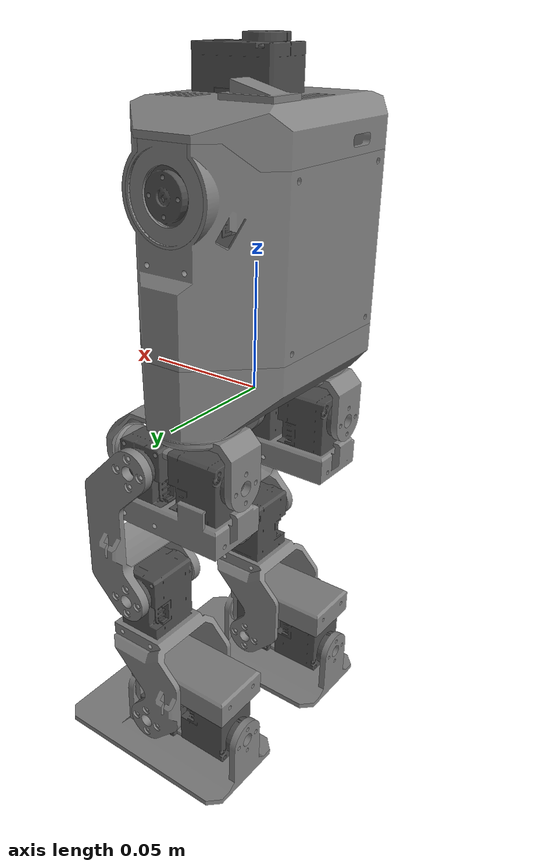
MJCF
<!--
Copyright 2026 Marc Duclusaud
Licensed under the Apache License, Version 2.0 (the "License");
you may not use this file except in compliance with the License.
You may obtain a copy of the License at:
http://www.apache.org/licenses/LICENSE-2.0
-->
<!-- Generated using onshape-to-robot -->
<!-- Onshape https://cad.onshape.com/documents/d424992a192a8ce34ffce163/v/d1df625a85f2de984257464b/e/b34620a03cc3a684006c5867 -->
<mujoco model="microban">
  <compiler angle="radian" meshdir="assets" autolimits="true"/>
  <default>
    <default class="microban">
      <joint frictionloss="0.1" armature="0.005"/>
      <position kp="50" dampratio="1"/>
      <default class="visual">
        <geom type="mesh" contype="0" conaffinity="0" group="2"/>
      </default>
      <default class="collision">
        <geom group="3"/>
      </default>
    </default>
    <default class="xl330">
      <joint damping="0.041" frictionloss="0.013" armature="0.0018"/>
      <motor gear="1"/>
    </default>
  </default>
  <sensor>
    <framequat name="orientation" objtype="site" noise="0.001" objname="imu"/>
    <gyro name="angular-velocity" site="imu" noise="0.005"/>
    <gyro name="imu_ang_vel" site="imu"/>
    <velocimeter name="imu_lin_vel" site="imu"/>
    <accelerometer name="imu_accel" site="imu"/>
    <subtreeangmom name="root_angmom" body="trunk"/>
  </sensor>
  <worldbody>
    <!-- Link trunk -->
    <body name="trunk" pos="0 0 0" quat="1 0 0 0" childclass="microban">
      <freejoint name="trunk_freejoint"/>
      <inertial pos="-0.00454781 -0.000104579 0.053896" mass="0.347283" fullinertia="0.000608722 0.000477224 0.000357224 -5.1387e-07 -1.16287e-05 1.9299e-06"/>
      <geom type="mesh" class="visual" pos="0.00575 -0.036 -0.0484" quat="0.707107 0 0 0.707107" mesh="arm_bearing_support__configuration_right" material="arm_bearing_support__configuration_right_material"/>
      <geom type="mesh" class="visual" pos="0 -0.044 0.081" quat="0.707107 0.707107 0 0" mesh="xl330_without_horn" material="xl330_without_horn_material"/>

      <geom class="collision" pos="0 0 0.05375" quat="0.707107 0 0 0.707107" type="box" size="0.054 0.008 0.05375"/>
      <geom class="collision" pos="0 0 0.05775" quat="0.707107 0 0 0.707107" type="box" size="0.029 0.033 0.04275"/>
      <geom type="mesh" class="visual" pos="0.00575 -0.036 -0.0484" quat="0.707107 0 0 0.707107" mesh="pelvis__configuration_right" material="pelvis__configuration_right_material"/>
      <geom type="mesh" class="visual" pos="-0.00575 0.036 -0.0484" quat="0.707107 -0 0 -0.707107" mesh="arm_bearing_support__configuration_right" material="arm_bearing_support__configuration_right_material"/>
      <geom type="mesh" class="visual" pos="-0.00204165 -0 0.1195" quat="0.707107 0 0 0.707107" mesh="xl330_without_horn" material="xl330_without_horn_material"/>
      <geom type="mesh" class="visual" pos="-0 0.036 0.0065" quat="0 0 -1 0" mesh="xl330_without_horn" material="xl330_without_horn_material"/>
      <geom type="mesh" class="visual" pos="-0 0.044 0.081" quat="0 0 -0.707107 -0.707107" mesh="xl330_without_horn" material="xl330_without_horn_material"/>
      <geom type="mesh" class="visual" pos="0.00575 -0.036 -0.0484" quat="0.707107 0 0 0.707107" mesh="chest__configuration_right" material="chest__configuration_right_material"/>
      <geom type="mesh" class="visual" pos="0.00575 -0.036 -0.0484" quat="0.707107 0 0 0.707107" mesh="trunk_top__configuration_right" material="trunk_top__configuration_right_material"/>
      <geom type="mesh" class="visual" pos="-0.01 -0 0.05115" quat="0.5 0.5 -0.5 -0.5" mesh="battery" material="battery_material"/>
      <geom type="mesh" class="visual" pos="-0.014 0.02 0.1075" quat="1 0 0 0" mesh="switch" material="switch_material"/>
      <geom type="mesh" class="visual" pos="0 -0.036 0.0065" quat="0 1 0 -0" mesh="xl330_without_horn" material="xl330_without_horn_material"/>
      <site group="3" name="body" pos="0 0 0" quat="1 -0 -0 -0"/>
      <!-- Frame imu -->
      <site group="3" name="imu" pos="0.01483 -0.002 0.0675" quat="0.5 -0.5 -0.5 0.5"/>
      <!-- Link head -->
        <!-- Joint from trunk to head -->
      <!-- Link shoulder -->
        <!-- Joint from trunk to shoulder -->
          <!-- Joint from shoulder to humerus__configuration_right -->
          <!-- Link radius -->
            <!-- Joint from humerus__configuration_right to radius -->
      <!-- Link hip -->
      <body name="hip" pos="0 -0.036 0" quat="1 -0 -0 0">
        <!-- Joint from trunk to hip -->
        <joint axis="0 0 1" name="right_hip_yaw" type="hinge" range="-4.188790204786353 1.047197551196635" class="xl330"/>
        <inertial pos="0.00421822 1.46909e-07 -0.00948697" mass="0.00884451" fullinertia="9.36719e-07 4.32505e-06 4.03697e-06 -3.3e-11 1.95496e-07 0"/>

        <geom type="mesh" class="visual" pos="0.00575 -0 -0.0484" quat="0.707107 0 0 0.707107" mesh="hip__configuration_right" material="hip__configuration_right_material"/>

        <!-- Link hip_block__configuration_right -->
        <body name="hip_block__configuration_right" pos="-0.02 0 -0.0214" quat="0.5 -0.5 0.5 -0.5">
          <!-- Joint from hip to hip_block__configuration_right -->
          <joint axis="0 0 1" name="right_hip_roll" type="hinge" range="-0.610865238197994 0.6108652381980366" class="xl330"/>
          <inertial pos="-5.75932e-05 0.00982795 0.0271518" mass="0.04763" fullinertia="1.64064e-05 1.33088e-05 7.85889e-06 -9.153e-09 7.8745e-08 6.63067e-07"/>

          <geom type="mesh" class="visual" pos="-0.008 -0 0.0385" quat="0 0.707107 0 -0.707107" mesh="xl330" material="xl330_material"/>
          <geom type="mesh" class="visual" pos="0 -0 0.033" quat="0 -0 1 0" mesh="dc15_a01_horn_idle2_dummy" material="dc15_a01_horn_idle2_dummy_material"/>
          <geom class="collision" pos="-0 0.02075 0.02575" quat="0 -0 0.707107 -0.707107" type="box" size="0.0135 0.02525 0.00625"/>
          <geom type="mesh" class="visual" pos="0 0.027 0.02575" quat="0 -0 0.707107 -0.707107" mesh="hip_dbl_block__configuration_right" material="hip_dbl_block__configuration_right_material"/>
          <geom type="mesh" class="visual" pos="-0 0 0.0065" quat="0 1 0 0" mesh="xl330_without_horn" material="xl330_without_horn_material"/>

          <geom type="mesh" class="visual" pos="0 -0 0.033" quat="0 -0 1 0" mesh="bts2_m2_6x8" material="bts2_m2_6x8_material"/>

          <geom type="mesh" class="visual" pos="0 -0 0.033" quat="0 -0 1 0" mesh="dc15_a01_idle_cap_dummy" material="dc15_a01_idle_cap_dummy_material"/>

          <geom type="mesh" class="visual" pos="-0 -0.0095 0.0385" quat="0 0 -0.707107 -0.707107" mesh="spacer__configuration_right" material="spacer__configuration_right_material"/>

          <body name="femur__configuration_right" pos="-0.0145 -0 0.0385" quat="0 0.707107 0 -0.707107">
            <!-- Joint from hip_block__configuration_right to femur__configuration_right -->
            <joint axis="0 0 1" name="right_hip_pitch" type="hinge" range="-1.5707963267948974 1.5707963267948957" class="xl330"/>
            <inertial pos="-0.0109472 -0.0366847 -0.0147025" mass="0.014726" fullinertia="1.12665e-05 4.38335e-06 8.95932e-06 -1.12592e-06 1.333e-09 -4.521e-09"/>

            <geom class="collision" pos="-0.015 -0.0335001 0.00275" quat="0.5 -0.5 0.5 0.5" type="box" size="0.00125 0.009 0.022228"/>
            <geom class="collision" pos="-0.008818 -0.00881806 0.00275" quat="0.653281 -0.270598 0.653281 0.270598" type="box" size="0.00125 0.009 0.0124705"/>
            <geom class="collision" pos="-0.011318 -0.0556821 0.00275" quat="0.270598 -0.653281 0.270598 0.653281" type="box" size="0.00125 0.009 0.008935"/>
            <geom type="mesh" class="visual" pos="0.003 -0.132713 -0.0145" quat="0.5 -0.5 0.5 0.5" mesh="femur__configuration_right" material="femur__configuration_right_material"/>

            <body name="tibia__configuration_right" pos="-0.005 -0.062 -0" quat="1 -0 0 -0">
              <!-- Joint from femur__configuration_right to tibia__configuration_right -->
              <joint axis="0 0 1" name="right_knee" type="hinge" range="-0.7853981633977201 2.356194490192073" class="xl330"/>
              <inertial pos="0.00276278 -0.0196679 -0.0144621" mass="0.0300463" fullinertia="1.53882e-05 5.3311e-06 1.38581e-05 2.25674e-06 7.6682e-08 -1.37001e-07"/>

              <geom type="mesh" class="visual" pos="0 -0 -0.0065" quat="1 -0 -0 0" mesh="xl330" material="xl330_material"/>

              <geom class="collision" pos="0.017 -0.0444631 0.00275" quat="0.5 -0.5 0.5 0.5" type="box" size="0.00125 0.009 0.0115"/>
              <geom class="collision" pos="0.0138 -0.0554431 0.00275" quat="0.653281 -0.270598 0.653281 0.270598" type="box" size="0.00125 0.009 0.00825"/>
              <geom class="collision" pos="0.00675 -0.0287131 0.00275" quat="0.270598 -0.653281 0.270598 0.653281" type="box" size="0.00125 0.0106065 0.016617"/>
              <geom class="collision" pos="0.0117 -0.0236231 -0.0145" quat="0.270598 -0.653281 0.270598 0.653281" type="box" size="0.0185 0.0035 0.0023295"/>
              <geom type="mesh" class="visual" pos="0.008 -0.0707131 -0.0145" quat="0.5 -0.5 0.5 0.5" mesh="tibia__configuration_right" material="tibia__configuration_right_material"/>

              <body name="ankle_block__configuration_left" pos="0.008 -0.0612131 -0" quat="0 -0 -0 1">
                <!-- Joint from tibia__configuration_right to ankle_block__configuration_left -->
                <joint axis="0 0 1" name="right_ankle_pitch" type="hinge" range="-1.5707963267948077 0.6108652381981041" class="xl330"/>
                <inertial pos="-0.0110676 -0.00979852 -0.0144015" mass="0.04722" fullinertia="7.83993e-06 1.29837e-05 1.60971e-05 -6.00742e-07 -4.9782e-08 -6.127e-09"/>

                <geom type="mesh" class="visual" pos="0 0 -0.0065" quat="1 0 -0 0" mesh="xl330" material="xl330_material"/>

                <geom type="mesh" class="visual" pos="-0.0055 0 -0.0145" quat="0 -0.707107 -0 0.707107" mesh="dc15_a01_horn_idle2_dummy" material="dc15_a01_horn_idle2_dummy_material"/>

                <geom class="collision" pos="-0.01275 -0.02075 -0.0145" quat="0.5 0.5 0.5 -0.5" type="box" size="0.0135 0.02525 0.00625"/>
                <geom type="mesh" class="visual" pos="0 0.0095 -0.0145" quat="0.5 0.5 0.5 -0.5" mesh="ankle_dbl_block__configuration_right" material="ankle_dbl_block__configuration_right_material"/>

                <geom type="mesh" class="visual" pos="-0.032 0 -0.0145" quat="0.707107 0 -0.707107 -0" mesh="xl330_without_horn" material="xl330_without_horn_material"/>

                <geom type="mesh" class="visual" pos="-0.0055 0 -0.0145" quat="0 -0.707107 -0 0.707107" mesh="bts2_m2_6x8" material="bts2_m2_6x8_material"/>

                <geom type="mesh" class="visual" pos="-0.0055 0 -0.0145" quat="0 -0.707107 -0 0.707107" mesh="dc15_a01_idle_cap_dummy" material="dc15_a01_idle_cap_dummy_material"/>

                <geom type="mesh" class="visual" pos="0 0.0095 -0.0145" quat="0.5 0.5 0.5 -0.5" mesh="spacer__configuration_right" material="spacer__configuration_right_material"/>
                <!-- Link foot -->
                <body name="foot" pos="-0.0385 0 -0.0145" quat="0 -0.707107 0 -0.707107">
                  <!-- Joint from ankle_block__configuration_left to foot -->
                  <joint axis="0 0 1" name="right_ankle_roll" type="hinge" range="-0.610865238197748 0.6108652381982826" class="xl330"/>
                  <inertial pos="-0 -0.0168869 0.0347422" mass="0.016823" fullinertia="1.15605e-05 1.2167e-05 2.53496e-06 0 -0 5.67932e-07"/>

                  <geom name="right_foot_collision_1" class="collision" pos="-0 -0.02175 0.042" quat="0 0 0.707107 0.707107" type="box" size="0.0225 0.04 0.00125"/>
                  <geom name="right_foot_collision_2" class="collision" pos="-0 -0.02175 0.042" quat="0 0 0.707107 0.707107" type="box" size="0.0175 0.045 0.00125"/>
                  <geom name="right_foot_collision_3" class="collision" pos="-0.0175 -0.02175 0.002" quat="0.270598 -0.270598 -0.653281 -0.653281" type="box" size="0.00353553 0.00353553 0.00125"/>
                  <geom name="right_foot_collision_4" class="collision" pos="0.0175 -0.02175 0.002" quat="0.270598 -0.270598 -0.653281 -0.653281" type="box" size="0.00353553 0.00353553 0.00125"/>
                  <geom name="right_foot_collision_5" class="collision" pos="-0.0175 -0.02175 0.082" quat="0.270598 -0.270598 -0.653281 -0.653281" type="box" size="0.00353553 0.00353553 0.00125"/>
                  <geom name="right_foot_collision_6" class="collision" pos="0.0175 -0.02175 0.082" quat="0.270598 -0.270598 -0.653281 -0.653281" type="box" size="0.00353553 0.00353553 0.00125"/>
                  <geom type="mesh" class="visual" pos="-0 -0.0095 0.0385" quat="0 0 0.707107 0.707107" mesh="foot__configuration_right" material="foot__configuration_right_material"/>

                  <!-- Frame right_foot -->
                  <site group="3" name="right_foot" pos="-0 -0.023 0.042" quat="0.5 -0.5 -0.5 -0.5"/>
                </body>
              </body>
            </body>
          </body>
        </body>
      </body>
      <!-- Link shoulder_2 -->
        <!-- Joint from trunk to shoulder_2 -->

        <!-- Link humerus__configuration_left -->
          <!-- Joint from shoulder_2 to humerus__configuration_left -->
          <!-- Link radius_2 -->
            <!-- Joint from humerus__configuration_left to radius_2 -->
      <!-- Link hip_2 -->
      <body name="hip_2" pos="-0 0.036 0" quat="0 -0 0 -1">
        <!-- Joint from trunk to hip_2 -->
        <joint axis="0 0 1" name="left_hip_yaw" type="hinge" range="-1.0471975511965976 4.1887902047863905" class="xl330"/>
        <inertial pos="-0.00421822 -1.46909e-07 -0.00948697" mass="0.00884451" fullinertia="9.36719e-07 4.32505e-06 4.03697e-06 -3.3e-11 -1.95496e-07 -0"/>

        <geom type="mesh" class="visual" pos="-0.00575 -0 -0.0484" quat="0.707107 -0 -0 -0.707107" mesh="hip__configuration_right" material="hip__configuration_right_material"/>

        <!-- Link hip_block__configuration_left -->
        <body name="hip_block__configuration_left" pos="0.02 0 -0.0214" quat="0.5 -0.5 -0.5 0.5">
          <!-- Joint from hip_2 to hip_block__configuration_left -->
          <joint axis="0 0 1" name="left_hip_roll" type="hinge" range="-0.6108652381980162 0.6108652381980144" class="xl330"/>
          <inertial pos="6.0554e-05 0.00982795 0.0271548" mass="0.04763" fullinertia="1.64096e-05 1.3312e-05 7.85888e-06 8.495e-09 -7.6959e-08 6.62404e-07"/>

          <geom type="mesh" class="visual" pos="0.008 -0 0.0385" quat="0 0.707107 0 0.707107" mesh="xl330" material="xl330_material"/>

          <geom type="mesh" class="visual" pos="-0 0 0.033" quat="0 -0 -1 -0" mesh="dc15_a01_horn_idle2_dummy" material="dc15_a01_horn_idle2_dummy_material"/>

          <geom class="collision" pos="-0 0.02075 0.02575" quat="0 -0 0.707107 -0.707107" type="box" size="0.0135 0.02525 0.00625"/>
          <geom type="mesh" class="visual" pos="0.027 0.027 0.02575" quat="0 -0 0.707107 -0.707107" mesh="hip_dbl_block__configuration_left" material="hip_dbl_block__configuration_left_material"/>

          <geom type="mesh" class="visual" pos="0 0 0.0065" quat="0 1 0 0" mesh="xl330_without_horn" material="xl330_without_horn_material"/>
          <geom type="mesh" class="visual" pos="-0 0 0.033" quat="0 -0 -1 -0" mesh="bts2_m2_6x8" material="bts2_m2_6x8_material"/>
          <geom type="mesh" class="visual" pos="-0 0 0.033" quat="0 -0 -1 -0" mesh="dc15_a01_idle_cap_dummy" material="dc15_a01_idle_cap_dummy_material"/>

          <geom type="mesh" class="visual" pos="-0 -0.0095 0.0385" quat="0 0 -0.707107 -0.707107" mesh="spacer__configuration_right" material="spacer__configuration_right_material"/>
          <!-- Link femur__configuration_left -->
          <body name="femur__configuration_left" pos="-0.0145 -0 0.0385" quat="0.707107 -0 -0.707107 0">
            <!-- Joint from hip_block__configuration_left to femur__configuration_left -->
            <joint axis="0 0 1" name="left_hip_pitch" type="hinge" range="-1.5707963267948974 1.5707963267948957" class="xl330"/>
            <inertial pos="0.0109472 0.0366847 -0.0142975" mass="0.014726" fullinertia="1.12665e-05 4.38335e-06 8.95932e-06 -1.12592e-06 1.333e-09 -4.521e-09"/>

            <geom class="collision" pos="0.015 0.0335001 -0.03175" quat="0.5 0.5 0.5 -0.5" type="box" size="0.00125 0.009 0.022228"/>
            <geom class="collision" pos="0.008818 0.00881806 -0.03175" quat="0.270598 0.653281 0.270598 -0.653281" type="box" size="0.00125 0.009 0.0124705"/>
            <geom class="collision" pos="0.011318 0.0556821 -0.03175" quat="0.653281 0.270598 0.653281 -0.270598" type="box" size="0.00125 0.009 0.008935"/>
            <geom type="mesh" class="visual" pos="-0.003 0.132713 -0.0515" quat="0.5 0.5 0.5 -0.5" mesh="femur__configuration_left" material="femur__configuration_left_material"/>

            <!-- Link tibia__configuration_left -->
            <body name="tibia__configuration_left" pos="0.005 0.062 0" quat="1 -0 -0 -0">
              <!-- Joint from femur__configuration_left to tibia__configuration_left -->
              <joint axis="0 0 1" name="left_knee" type="hinge" range="-0.7853981633974314 2.3561944901923617" class="xl330"/>
              <inertial pos="-0.00275805 0.0196679 -0.0145379" mass="0.0300463" fullinertia="1.53882e-05 5.33188e-06 1.38589e-05 2.25747e-06 7.7561e-08 -1.37001e-07"/>

              <geom type="mesh" class="visual" pos="-0 0 -0.0225" quat="0 1 0 0" mesh="xl330" material="xl330_material"/>
              <geom class="collision" pos="-0.017 0.0444631 -0.0317" quat="0.5 0.5 0.5 -0.5" type="box" size="0.00125 0.009 0.0115"/>
              <geom class="collision" pos="-0.0138 0.0554431 -0.03175" quat="0.270598 0.653281 0.270598 -0.653281" type="box" size="0.00125 0.009 0.00825"/>
              <geom class="collision" pos="-0.00675 0.0287131 -0.03175" quat="0.653281 0.270598 0.653281 -0.270598" type="box" size="0.00125 0.0106065 0.016617"/>
              <geom class="collision" pos="-0.0117 0.0236231 -0.0145" quat="0.653281 0.270598 0.653281 -0.270598" type="box" size="0.0185 0.0035 0.0023295"/>
              <geom type="mesh" class="visual" pos="-0.008 0.0707131 -0.0515" quat="0.5 0.5 0.5 -0.5" mesh="tibia__configuration_left" material="tibia__configuration_left_material"/>

              <!-- Link ankle_block__configuration_right -->
              <body name="ankle_block__configuration_right" pos="-0.008 0.0612131 -0" quat="0 0 -0 1">
                <!-- Joint from tibia__configuration_left to ankle_block__configuration_right -->
                <joint axis="0 0 1" name="left_ankle_pitch" type="hinge" range="-1.5707963267948744 0.6108652381980375" class="xl330"/>
                <inertial pos="0.0110706 0.00979852 -0.0145955" mass="0.04722" fullinertia="7.83996e-06 1.29805e-05 1.6094e-05 -6.01409e-07 -5.1613e-08 -6.789e-09"/>

                <geom type="mesh" class="visual" pos="0 0 -0.0225" quat="0 1 0 0" mesh="xl330" material="xl330_material"/>

                <geom type="mesh" class="visual" pos="0.0055 0 -0.0145" quat="0.707107 -0 0.707107 0" mesh="dc15_a01_horn_idle2_dummy" material="dc15_a01_horn_idle2_dummy_material"/>

                <geom class="collision" pos="0.01275 0.02075 -0.0145" quat="0.5 -0.5 0.5 0.5" type="box" size="0.0135 0.02525 0.00625"/>
                <geom type="mesh" class="visual" pos="-0 -0.0095 -0.0145" quat="0.5 -0.5 0.5 0.5" mesh="ankle_dbl_block__configuration_right" material="ankle_dbl_block__configuration_right_material"/>

                <geom type="mesh" class="visual" pos="0.032 0 -0.0145" quat="0 0.707107 0 0.707107" mesh="xl330_without_horn" material="xl330_without_horn_material"/>

                <geom type="mesh" class="visual" pos="0.0055 0 -0.0145" quat="0.707107 -0 0.707107 0" mesh="bts2_m2_6x8" material="bts2_m2_6x8_material"/>

                <geom type="mesh" class="visual" pos="0.0055 0 -0.0145" quat="0.707107 -0 0.707107 0" mesh="dc15_a01_idle_cap_dummy" material="dc15_a01_idle_cap_dummy_material"/>

                <geom type="mesh" class="visual" pos="-0 -0.0095 -0.0145" quat="0.5 -0.5 0.5 0.5" mesh="spacer__configuration_right" material="spacer__configuration_right_material"/>
                <!-- Link foot_2 -->
                <body name="foot_2" pos="0.0385 0 -0.0145" quat="0.707107 -0 -0.707107 0">
                  <!-- Joint from ankle_block__configuration_right to foot_2 -->
                  <joint axis="0 0 1" name="left_ankle_roll" type="hinge" range="-0.6108652381980109 0.6108652381980197" class="xl330"/>
                  <inertial pos="-0 -0.0168869 0.0347422" mass="0.016823" fullinertia="1.15605e-05 1.2167e-05 2.53496e-06 0 -0 5.67932e-07"/>

                  <geom name="left_foot_collision_1" class="collision" pos="-0 -0.02175 0.042" quat="0 0 0.707107 0.707107" type="box" size="0.0225 0.04 0.00125"/>
                  <geom name="left_foot_collision_2" class="collision" pos="-0 -0.02175 0.042" quat="0 0 0.707107 0.707107" type="box" size="0.0175 0.045 0.00125"/>
                  <geom name="left_foot_collision_3" class="collision" pos="-0.0175 -0.02175 0.002" quat="0.270598 -0.270598 -0.653281 -0.653281" type="box" size="0.00353553 0.00353553 0.00125"/>
                  <geom name="left_foot_collision_4" class="collision" pos="0.0175 -0.02175 0.002" quat="0.270598 -0.270598 -0.653281 -0.653281" type="box" size="0.00353553 0.00353553 0.00125"/>
                  <geom name="left_foot_collision_5" class="collision" pos="-0.0175 -0.02175 0.082" quat="0.270598 -0.270598 -0.653281 -0.653281" type="box" size="0.00353553 0.00353553 0.00125"/>
                  <geom name="left_foot_collision_6" class="collision" pos="0.0175 -0.02175 0.082" quat="0.270598 -0.270598 -0.653281 -0.653281" type="box" size="0.00353553 0.00353553 0.00125"/>
                  <geom type="mesh" class="visual" pos="-0 -0.0095 0.0385" quat="0 0 0.707107 0.707107" mesh="foot__configuration_right" material="foot__configuration_right_material"/>

                  <!-- Frame left_foot -->
                  <site group="3" name="left_foot" pos="-0 -0.023 0.042" quat="0.5 -0.5 -0.5 -0.5"/>
                </body>
              </body>
            </body>
          </body>
        </body>
      </body>
    </body>
  </worldbody>
  <asset>
    <mesh file="hip_dbl_block__configuration_right.stl"/>
    <mesh file="ankle_dbl_block__configuration_right.stl"/>
    <mesh file="arm_bearing_support__configuration_right.stl"/>
    <mesh file="dc15_a01_idle_cap_dummy.stl"/>
    <mesh file="head__configuration_right.stl"/>
    <mesh file="shoulder.stl"/>
    <mesh file="xl330_without_horn.stl"/>
    <mesh file="humerus.stl"/>
    <mesh file="pelvis__configuration_right.stl"/>
    <mesh file="dc15_a01_horn_idle2_dummy.stl"/>
    <mesh file="spacer__configuration_right.stl"/>
    <mesh file="battery.stl"/>
    <mesh file="tibia__configuration_right.stl"/>
    <mesh file="tibia__configuration_left.stl"/>
    <mesh file="bts2_m2_6x8.stl"/>
    <mesh file="radius.stl"/>
    <mesh file="xl330.stl"/>
    <mesh file="hip__configuration_right.stl"/>
    <mesh file="femur__configuration_left.stl"/>
    <mesh file="femur__configuration_right.stl"/>
    <mesh file="switch.stl"/>
    <mesh file="hip_dbl_block__configuration_left.stl"/>
    <mesh file="chest__configuration_right.stl"/>
    <mesh file="foot__configuration_right.stl"/>
    <mesh file="trunk_top__configuration_right.stl"/>
    <material name="arm_bearing_support__configuration_right_material" rgba="0.501961 0.501961 0.501961 1"/>
    <material name="xl330_without_horn_material" rgba="0.301961 0.301961 0.301961 1"/>
    <material name="pelvis__configuration_right_material" rgba="0.501961 0.501961 0.501961 1"/>
    <material name="chest__configuration_right_material" rgba="0.501961 0.501961 0.501961 1"/>
    <material name="trunk_top__configuration_right_material" rgba="0.501961 0.501961 0.501961 1"/>
    <material name="battery_material" rgba="0.647059 0.647059 0.647059 1"/>
    <material name="switch_material" rgba="0.498039 0.498039 0.498039 1"/>
    <material name="head__configuration_right_material" rgba="0.501961 0.501961 0.501961 1"/>
    <material name="shoulder_material" rgba="0.501961 0.501961 0.501961 1"/>
    <material name="xl330_material" rgba="0.301961 0.301961 0.301961 1"/>
    <material name="humerus_material" rgba="0.501961 0.501961 0.501961 1"/>
    <material name="radius_material" rgba="0.501961 0.501961 0.501961 1"/>
    <material name="dc15_a01_idle_cap_dummy_material" rgba="0.301961 0.301961 0.301961 1"/>
    <material name="bts2_m2_6x8_material" rgba="0.301961 0.301961 0.301961 1"/>
    <material name="hip__configuration_right_material" rgba="0.501961 0.501961 0.501961 1"/>
    <material name="dc15_a01_horn_idle2_dummy_material" rgba="0.6 0.6 0.6 1"/>
    <material name="hip_dbl_block__configuration_right_material" rgba="0.501961 0.501961 0.501961 1"/>
    <material name="spacer__configuration_right_material" rgba="0.501961 0.501961 0.501961 1"/>
    <material name="femur__configuration_right_material" rgba="0.501961 0.501961 0.501961 1"/>
    <material name="tibia__configuration_right_material" rgba="0.501961 0.501961 0.501961 1"/>
    <material name="ankle_dbl_block__configuration_right_material" rgba="0.501961 0.501961 0.501961 1"/>
    <material name="foot__configuration_right_material" rgba="0.501961 0.501961 0.501961 1"/>
    <material name="hip_dbl_block__configuration_left_material" rgba="0.501961 0.501961 0.501961 1"/>
    <material name="femur__configuration_left_material" rgba="0.501961 0.501961 0.501961 1"/>
    <material name="tibia__configuration_left_material" rgba="0.501961 0.501961 0.501961 1"/>
  </asset>
  <actuator>
    <motor class="xl330" name="right_hip_yaw" joint="right_hip_yaw"/>
    <motor class="xl330" name="right_hip_roll" joint="right_hip_roll"/>
    <motor class="xl330" name="right_hip_pitch" joint="right_hip_pitch"/>
    <motor class="xl330" name="right_knee" joint="right_knee"/>
    <motor class="xl330" name="right_ankle_pitch" joint="right_ankle_pitch"/>
    <motor class="xl330" name="right_ankle_roll" joint="right_ankle_roll"/>
    <motor class="xl330" name="left_hip_yaw" joint="left_hip_yaw"/>
    <motor class="xl330" name="left_hip_roll" joint="left_hip_roll"/>
    <motor class="xl330" name="left_hip_pitch" joint="left_hip_pitch"/>
    <motor class="xl330" name="left_knee" joint="left_knee"/>
    <motor class="xl330" name="left_ankle_pitch" joint="left_ankle_pitch"/>
    <motor class="xl330" name="left_ankle_roll" joint="left_ankle_roll"/>
  </actuator>
  <equality/>
</mujoco>
